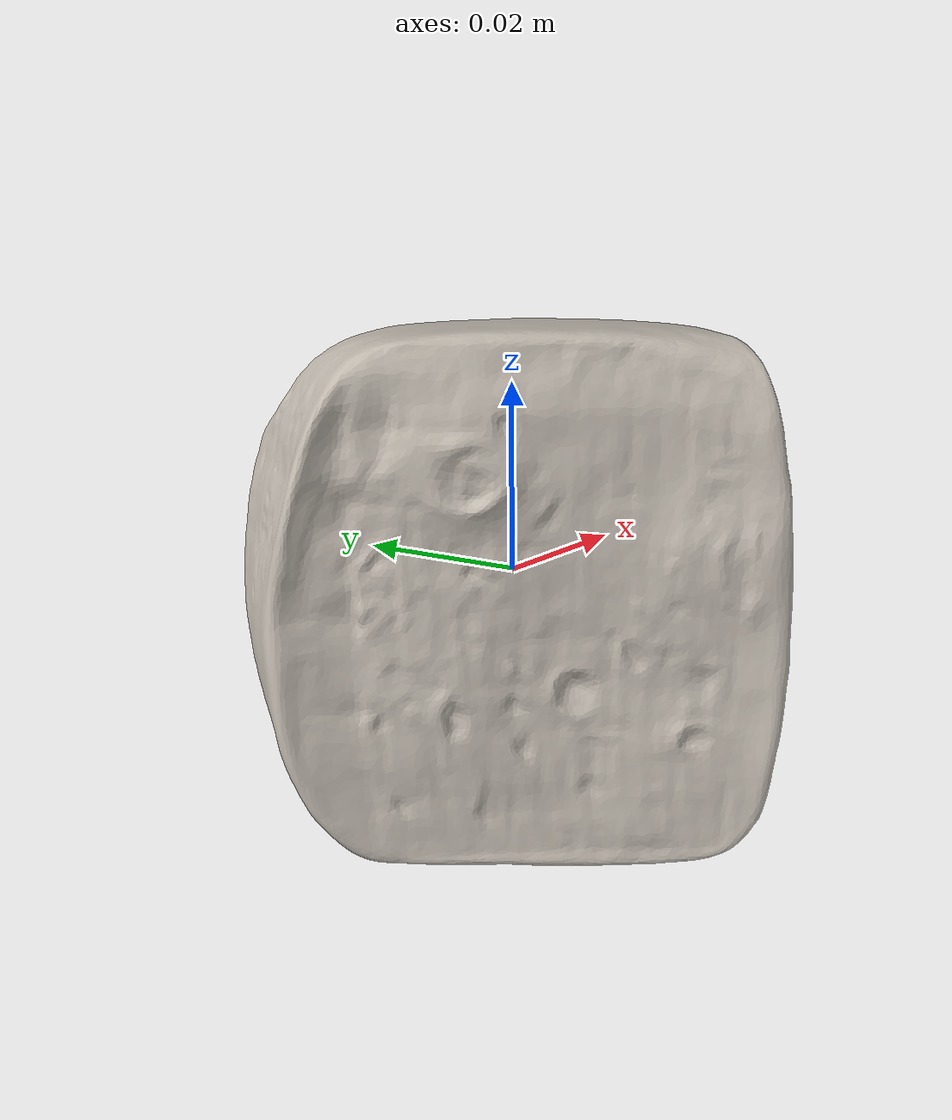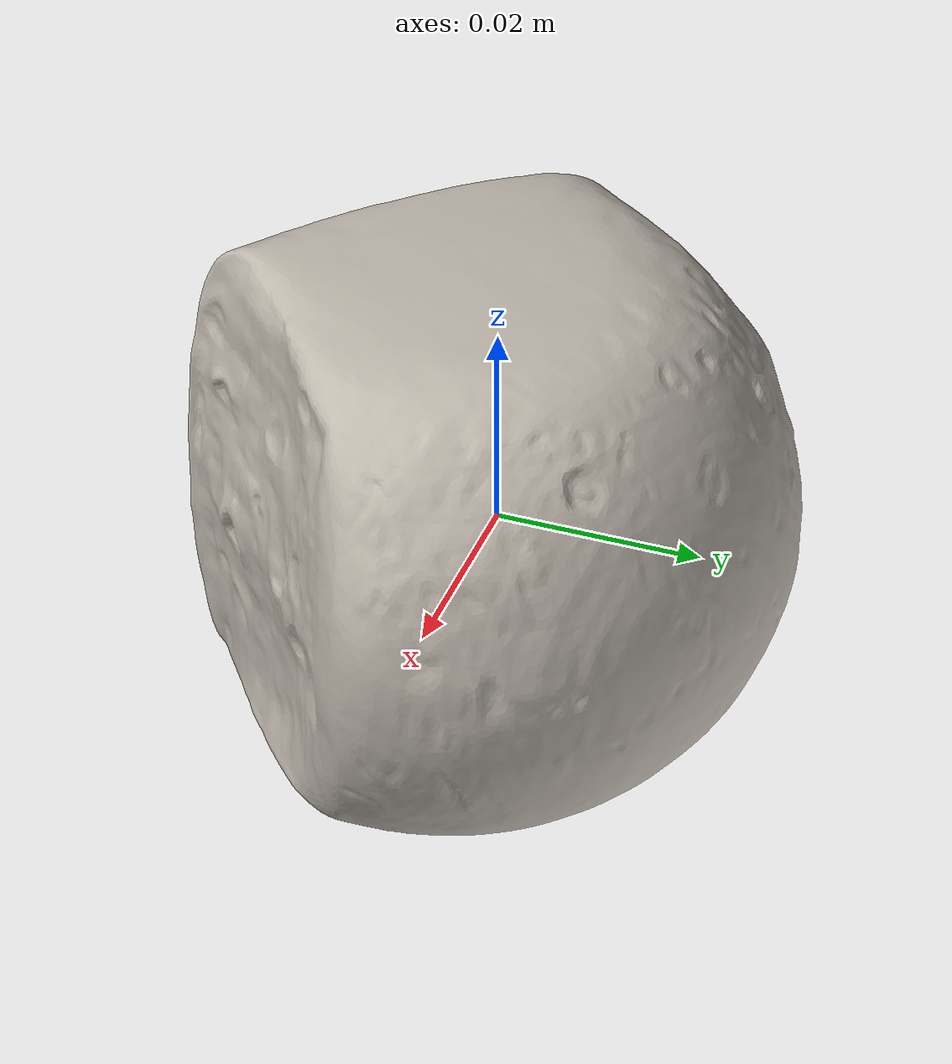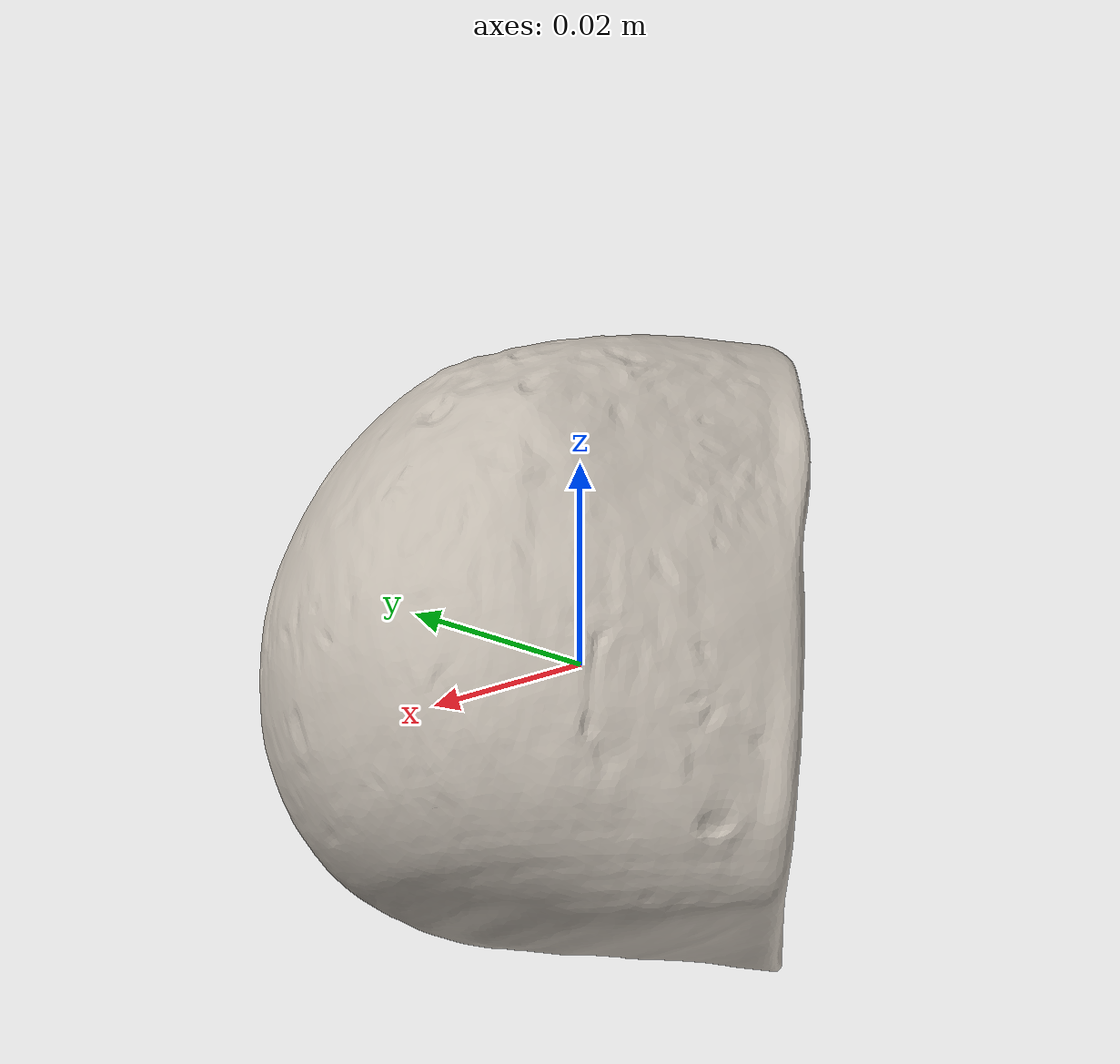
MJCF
<mujoco model="cheese_5">
  <asset>
    <texture file="/home/abhiram03/Desktop/mimicgen/robosuite-kitchen/robosuite/models/assets/textures/ceramic.png" name="tex-cheese_5" type="2d"/>
    <material name="cheese_5" reflectance="0.5" texrepeat="1 1" texture="tex-cheese_5" texuniform="false"/>
    <mesh file="visual/model_normalized_0.obj" name="model_normalized_0_vis" scale="0.06000000000000002 0.06000000000000002 0.06000000000000002" refquat="-0.19509032201612816 0.0 0.0 0.9807852804032303"/>
    <mesh file="collision/model_normalized_collision_13.obj" name="model_normalized_collision_13._coll" scale="0.06000000000000002 0.06000000000000002 0.06000000000000002" refquat="-0.19509032201612816 0.0 0.0 0.9807852804032303"/>
    <mesh file="collision/model_normalized_collision_15.obj" name="model_normalized_collision_15._coll" scale="0.06000000000000002 0.06000000000000002 0.06000000000000002" refquat="-0.19509032201612816 0.0 0.0 0.9807852804032303"/>
    <mesh file="collision/model_normalized_collision_10.obj" name="model_normalized_collision_10._coll" scale="0.06000000000000002 0.06000000000000002 0.06000000000000002" refquat="-0.19509032201612816 0.0 0.0 0.9807852804032303"/>
    <mesh file="collision/model_normalized_collision_26.obj" name="model_normalized_collision_26._coll" scale="0.06000000000000002 0.06000000000000002 0.06000000000000002" refquat="-0.19509032201612816 0.0 0.0 0.9807852804032303"/>
    <mesh file="collision/model_normalized_collision_25.obj" name="model_normalized_collision_25._coll" scale="0.06000000000000002 0.06000000000000002 0.06000000000000002" refquat="-0.19509032201612816 0.0 0.0 0.9807852804032303"/>
    <mesh file="collision/model_normalized_collision_5.obj" name="model_normalized_collision_5._coll" scale="0.06000000000000002 0.06000000000000002 0.06000000000000002" refquat="-0.19509032201612816 0.0 0.0 0.9807852804032303"/>
    <mesh file="collision/model_normalized_collision_31.obj" name="model_normalized_collision_31._coll" scale="0.06000000000000002 0.06000000000000002 0.06000000000000002" refquat="-0.19509032201612816 0.0 0.0 0.9807852804032303"/>
    <mesh file="collision/model_normalized_collision_3.obj" name="model_normalized_collision_3._coll" scale="0.06000000000000002 0.06000000000000002 0.06000000000000002" refquat="-0.19509032201612816 0.0 0.0 0.9807852804032303"/>
    <mesh file="collision/model_normalized_collision_14.obj" name="model_normalized_collision_14._coll" scale="0.06000000000000002 0.06000000000000002 0.06000000000000002" refquat="-0.19509032201612816 0.0 0.0 0.9807852804032303"/>
    <mesh file="collision/model_normalized_collision_28.obj" name="model_normalized_collision_28._coll" scale="0.06000000000000002 0.06000000000000002 0.06000000000000002" refquat="-0.19509032201612816 0.0 0.0 0.9807852804032303"/>
    <mesh file="collision/model_normalized_collision_11.obj" name="model_normalized_collision_11._coll" scale="0.06000000000000002 0.06000000000000002 0.06000000000000002" refquat="-0.19509032201612816 0.0 0.0 0.9807852804032303"/>
    <mesh file="collision/model_normalized_collision_29.obj" name="model_normalized_collision_29._coll" scale="0.06000000000000002 0.06000000000000002 0.06000000000000002" refquat="-0.19509032201612816 0.0 0.0 0.9807852804032303"/>
    <mesh file="collision/model_normalized_collision_24.obj" name="model_normalized_collision_24._coll" scale="0.06000000000000002 0.06000000000000002 0.06000000000000002" refquat="-0.19509032201612816 0.0 0.0 0.9807852804032303"/>
    <mesh file="collision/model_normalized_collision_1.obj" name="model_normalized_collision_1._coll" scale="0.06000000000000002 0.06000000000000002 0.06000000000000002" refquat="-0.19509032201612816 0.0 0.0 0.9807852804032303"/>
    <mesh file="collision/model_normalized_collision_0.obj" name="model_normalized_collision_0._coll" scale="0.06000000000000002 0.06000000000000002 0.06000000000000002" refquat="-0.19509032201612816 0.0 0.0 0.9807852804032303"/>
    <mesh file="collision/model_normalized_collision_27.obj" name="model_normalized_collision_27._coll" scale="0.06000000000000002 0.06000000000000002 0.06000000000000002" refquat="-0.19509032201612816 0.0 0.0 0.9807852804032303"/>
    <mesh file="collision/model_normalized_collision_9.obj" name="model_normalized_collision_9._coll" scale="0.06000000000000002 0.06000000000000002 0.06000000000000002" refquat="-0.19509032201612816 0.0 0.0 0.9807852804032303"/>
    <mesh file="collision/model_normalized_collision_19.obj" name="model_normalized_collision_19._coll" scale="0.06000000000000002 0.06000000000000002 0.06000000000000002" refquat="-0.19509032201612816 0.0 0.0 0.9807852804032303"/>
    <mesh file="collision/model_normalized_collision_21.obj" name="model_normalized_collision_21._coll" scale="0.06000000000000002 0.06000000000000002 0.06000000000000002" refquat="-0.19509032201612816 0.0 0.0 0.9807852804032303"/>
    <mesh file="collision/model_normalized_collision_30.obj" name="model_normalized_collision_30._coll" scale="0.06000000000000002 0.06000000000000002 0.06000000000000002" refquat="-0.19509032201612816 0.0 0.0 0.9807852804032303"/>
    <mesh file="collision/model_normalized_collision_20.obj" name="model_normalized_collision_20._coll" scale="0.06000000000000002 0.06000000000000002 0.06000000000000002" refquat="-0.19509032201612816 0.0 0.0 0.9807852804032303"/>
    <mesh file="collision/model_normalized_collision_2.obj" name="model_normalized_collision_2._coll" scale="0.06000000000000002 0.06000000000000002 0.06000000000000002" refquat="-0.19509032201612816 0.0 0.0 0.9807852804032303"/>
    <mesh file="collision/model_normalized_collision_7.obj" name="model_normalized_collision_7._coll" scale="0.06000000000000002 0.06000000000000002 0.06000000000000002" refquat="-0.19509032201612816 0.0 0.0 0.9807852804032303"/>
    <mesh file="collision/model_normalized_collision_22.obj" name="model_normalized_collision_22._coll" scale="0.06000000000000002 0.06000000000000002 0.06000000000000002" refquat="-0.19509032201612816 0.0 0.0 0.9807852804032303"/>
    <mesh file="collision/model_normalized_collision_16.obj" name="model_normalized_collision_16._coll" scale="0.06000000000000002 0.06000000000000002 0.06000000000000002" refquat="-0.19509032201612816 0.0 0.0 0.9807852804032303"/>
    <mesh file="collision/model_normalized_collision_8.obj" name="model_normalized_collision_8._coll" scale="0.06000000000000002 0.06000000000000002 0.06000000000000002" refquat="-0.19509032201612816 0.0 0.0 0.9807852804032303"/>
    <mesh file="collision/model_normalized_collision_6.obj" name="model_normalized_collision_6._coll" scale="0.06000000000000002 0.06000000000000002 0.06000000000000002" refquat="-0.19509032201612816 0.0 0.0 0.9807852804032303"/>
    <mesh file="collision/model_normalized_collision_18.obj" name="model_normalized_collision_18._coll" scale="0.06000000000000002 0.06000000000000002 0.06000000000000002" refquat="-0.19509032201612816 0.0 0.0 0.9807852804032303"/>
    <mesh file="collision/model_normalized_collision_17.obj" name="model_normalized_collision_17._coll" scale="0.06000000000000002 0.06000000000000002 0.06000000000000002" refquat="-0.19509032201612816 0.0 0.0 0.9807852804032303"/>
    <mesh file="collision/model_normalized_collision_12.obj" name="model_normalized_collision_12._coll" scale="0.06000000000000002 0.06000000000000002 0.06000000000000002" refquat="-0.19509032201612816 0.0 0.0 0.9807852804032303"/>
    <mesh file="collision/model_normalized_collision_4.obj" name="model_normalized_collision_4._coll" scale="0.06000000000000002 0.06000000000000002 0.06000000000000002" refquat="-0.19509032201612816 0.0 0.0 0.9807852804032303"/>
    <mesh file="collision/model_normalized_collision_23.obj" name="model_normalized_collision_23._coll" scale="0.06000000000000002 0.06000000000000002 0.06000000000000002" refquat="-0.19509032201612816 0.0 0.0 0.9807852804032303"/>
    <texture type="2d" name="d597f554ec14_cheese__3d_asset_0__texture_kd" file="visual/d597f554ec14_cheese__3d_asset_0__texture_kd.png"/>
    <material name="Material_0" texture="d597f554ec14_cheese__3d_asset_0__texture_kd" specular="0.18" shininess="0.12"/>
  </asset>
  <default>
    <default class="region">
      <geom group="1" conaffinity="0" contype="0" rgba="0 1 0 0"/>
    </default>
  </default>
  <worldbody>
    <body>
      <body name="object">
        <geom solimp="0.998 0.998 0.001" solref="0.001 1" density="100" friction="0.95 0.3 0.1" type="mesh" mesh="model_normalized_0_vis" conaffinity="0" contype="0" group="1" material="Material_0"/>
        <geom solimp="0.998 0.998 0.001" solref="0.001 1" density="100" friction="0.95 0.3 0.1" type="mesh" mesh="model_normalized_collision_13._coll" group="0" rgba="0.8 0.8 0.8 0.0"/>
        <geom solimp="0.998 0.998 0.001" solref="0.001 1" density="100" friction="0.95 0.3 0.1" type="mesh" mesh="model_normalized_collision_15._coll" group="0" rgba="0.8 0.8 0.8 0.0"/>
        <geom solimp="0.998 0.998 0.001" solref="0.001 1" density="100" friction="0.95 0.3 0.1" type="mesh" mesh="model_normalized_collision_10._coll" group="0" rgba="0.8 0.8 0.8 0.0"/>
        <geom solimp="0.998 0.998 0.001" solref="0.001 1" density="100" friction="0.95 0.3 0.1" type="mesh" mesh="model_normalized_collision_26._coll" group="0" rgba="0.8 0.8 0.8 0.0"/>
        <geom solimp="0.998 0.998 0.001" solref="0.001 1" density="100" friction="0.95 0.3 0.1" type="mesh" mesh="model_normalized_collision_25._coll" group="0" rgba="0.8 0.8 0.8 0.0"/>
        <geom solimp="0.998 0.998 0.001" solref="0.001 1" density="100" friction="0.95 0.3 0.1" type="mesh" mesh="model_normalized_collision_5._coll" group="0" rgba="0.8 0.8 0.8 0.0"/>
        <geom solimp="0.998 0.998 0.001" solref="0.001 1" density="100" friction="0.95 0.3 0.1" type="mesh" mesh="model_normalized_collision_31._coll" group="0" rgba="0.8 0.8 0.8 0.0"/>
        <geom solimp="0.998 0.998 0.001" solref="0.001 1" density="100" friction="0.95 0.3 0.1" type="mesh" mesh="model_normalized_collision_3._coll" group="0" rgba="0.8 0.8 0.8 0.0"/>
        <geom solimp="0.998 0.998 0.001" solref="0.001 1" density="100" friction="0.95 0.3 0.1" type="mesh" mesh="model_normalized_collision_14._coll" group="0" rgba="0.8 0.8 0.8 0.0"/>
        <geom solimp="0.998 0.998 0.001" solref="0.001 1" density="100" friction="0.95 0.3 0.1" type="mesh" mesh="model_normalized_collision_28._coll" group="0" rgba="0.8 0.8 0.8 0.0"/>
        <geom solimp="0.998 0.998 0.001" solref="0.001 1" density="100" friction="0.95 0.3 0.1" type="mesh" mesh="model_normalized_collision_11._coll" group="0" rgba="0.8 0.8 0.8 0.0"/>
        <geom solimp="0.998 0.998 0.001" solref="0.001 1" density="100" friction="0.95 0.3 0.1" type="mesh" mesh="model_normalized_collision_29._coll" group="0" rgba="0.8 0.8 0.8 0.0"/>
        <geom solimp="0.998 0.998 0.001" solref="0.001 1" density="100" friction="0.95 0.3 0.1" type="mesh" mesh="model_normalized_collision_24._coll" group="0" rgba="0.8 0.8 0.8 0.0"/>
        <geom solimp="0.998 0.998 0.001" solref="0.001 1" density="100" friction="0.95 0.3 0.1" type="mesh" mesh="model_normalized_collision_1._coll" group="0" rgba="0.8 0.8 0.8 0.0"/>
        <geom solimp="0.998 0.998 0.001" solref="0.001 1" density="100" friction="0.95 0.3 0.1" type="mesh" mesh="model_normalized_collision_0._coll" group="0" rgba="0.8 0.8 0.8 0.0"/>
        <geom solimp="0.998 0.998 0.001" solref="0.001 1" density="100" friction="0.95 0.3 0.1" type="mesh" mesh="model_normalized_collision_27._coll" group="0" rgba="0.8 0.8 0.8 0.0"/>
        <geom solimp="0.998 0.998 0.001" solref="0.001 1" density="100" friction="0.95 0.3 0.1" type="mesh" mesh="model_normalized_collision_9._coll" group="0" rgba="0.8 0.8 0.8 0.0"/>
        <geom solimp="0.998 0.998 0.001" solref="0.001 1" density="100" friction="0.95 0.3 0.1" type="mesh" mesh="model_normalized_collision_19._coll" group="0" rgba="0.8 0.8 0.8 0.0"/>
        <geom solimp="0.998 0.998 0.001" solref="0.001 1" density="100" friction="0.95 0.3 0.1" type="mesh" mesh="model_normalized_collision_21._coll" group="0" rgba="0.8 0.8 0.8 0.0"/>
        <geom solimp="0.998 0.998 0.001" solref="0.001 1" density="100" friction="0.95 0.3 0.1" type="mesh" mesh="model_normalized_collision_30._coll" group="0" rgba="0.8 0.8 0.8 0.0"/>
        <geom solimp="0.998 0.998 0.001" solref="0.001 1" density="100" friction="0.95 0.3 0.1" type="mesh" mesh="model_normalized_collision_20._coll" group="0" rgba="0.8 0.8 0.8 0.0"/>
        <geom solimp="0.998 0.998 0.001" solref="0.001 1" density="100" friction="0.95 0.3 0.1" type="mesh" mesh="model_normalized_collision_2._coll" group="0" rgba="0.8 0.8 0.8 0.0"/>
        <geom solimp="0.998 0.998 0.001" solref="0.001 1" density="100" friction="0.95 0.3 0.1" type="mesh" mesh="model_normalized_collision_7._coll" group="0" rgba="0.8 0.8 0.8 0.0"/>
        <geom solimp="0.998 0.998 0.001" solref="0.001 1" density="100" friction="0.95 0.3 0.1" type="mesh" mesh="model_normalized_collision_22._coll" group="0" rgba="0.8 0.8 0.8 0.0"/>
        <geom solimp="0.998 0.998 0.001" solref="0.001 1" density="100" friction="0.95 0.3 0.1" type="mesh" mesh="model_normalized_collision_16._coll" group="0" rgba="0.8 0.8 0.8 0.0"/>
        <geom solimp="0.998 0.998 0.001" solref="0.001 1" density="100" friction="0.95 0.3 0.1" type="mesh" mesh="model_normalized_collision_8._coll" group="0" rgba="0.8 0.8 0.8 0.0"/>
        <geom solimp="0.998 0.998 0.001" solref="0.001 1" density="100" friction="0.95 0.3 0.1" type="mesh" mesh="model_normalized_collision_6._coll" group="0" rgba="0.8 0.8 0.8 0.0"/>
        <geom solimp="0.998 0.998 0.001" solref="0.001 1" density="100" friction="0.95 0.3 0.1" type="mesh" mesh="model_normalized_collision_18._coll" group="0" rgba="0.8 0.8 0.8 0.0"/>
        <geom solimp="0.998 0.998 0.001" solref="0.001 1" density="100" friction="0.95 0.3 0.1" type="mesh" mesh="model_normalized_collision_17._coll" group="0" rgba="0.8 0.8 0.8 0.0"/>
        <geom solimp="0.998 0.998 0.001" solref="0.001 1" density="100" friction="0.95 0.3 0.1" type="mesh" mesh="model_normalized_collision_12._coll" group="0" rgba="0.8 0.8 0.8 0.0"/>
        <geom solimp="0.998 0.998 0.001" solref="0.001 1" density="100" friction="0.95 0.3 0.1" type="mesh" mesh="model_normalized_collision_4._coll" group="0" rgba="0.8 0.8 0.8 0.0"/>
        <geom solimp="0.998 0.998 0.001" solref="0.001 1" density="100" friction="0.95 0.3 0.1" type="mesh" mesh="model_normalized_collision_23._coll" group="0" rgba="0.8 0.8 0.8 0.0"/>
        <geom class="region" name="reg_bbox" type="box" pos="0.0011006760218497382 -0.0011222400493304733 -0.00012420359999999742" size="0.0327159539690882 0.02953888916838031 0.02681818200000001"/>
      </body>
    </body>
  </worldbody>
  <custom><text name="material_gt" data="cheese"/></custom>
</mujoco>
